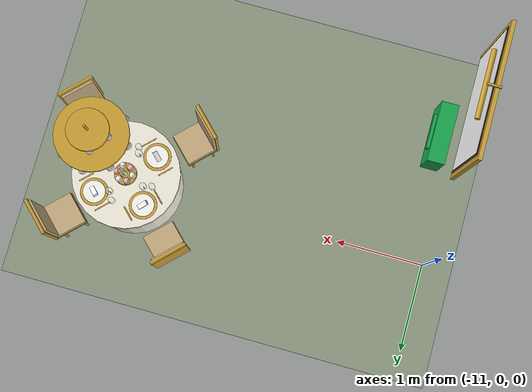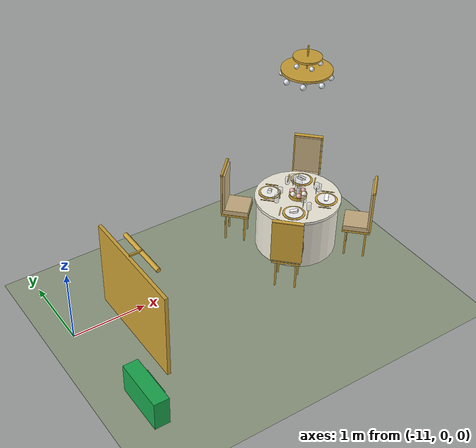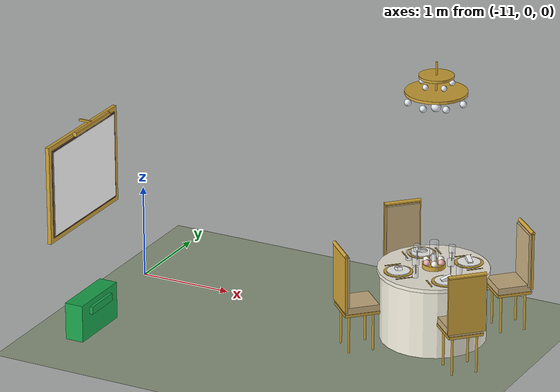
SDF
<sdf version="1.9">
 <world name="dar_tunibot">
  <model name="ground_plane">
   <static>true</static>
   <link name="link">
    <collision name="collision">
     <geometry><plane><normal>0 0 1</normal><size>60 60</size></plane></geometry>
    </collision>
    <visual name="visual">
     <geometry><plane><normal>0 0 1</normal><size>60 60</size></plane></geometry>
     <material><ambient>0.55 0.6 0.5 1</ambient><diffuse>0.55 0.6 0.5 1</diffuse></material>
    </visual>
   </link>
  </model>
  <model name="table_9">
   <static>true</static>
   <pose>-7.6 0.0 0 0 0 0</pose>
   <link name="link">
    <visual name="cloth_v">
     <pose>0.000 0.000 0.370 0.0000 0.0000 0.0000</pose>
     <geometry><cylinder><radius>0.550</radius><length>0.740</length></cylinder></geometry>
     <material>
      <ambient>0.95 0.93 0.87 1</ambient>
      <diffuse>0.95 0.93 0.87 1</diffuse>
      <specular>0.1 0.1 0.1 1</specular>
     </material>
    </visual>
    <collision name="cloth_c">
     <pose>0.000 0.000 0.370 0.0000 0.0000 0.0000</pose>
     <geometry><cylinder><radius>0.550</radius><length>0.740</length></cylinder></geometry>
    </collision>
    <visual name="drape_v">
     <pose>0.000 0.000 0.750 0.0000 0.0000 0.0000</pose>
     <geometry><cylinder><radius>0.580</radius><length>0.040</length></cylinder></geometry>
     <material>
      <ambient>0.95 0.93 0.87 1</ambient>
      <diffuse>0.95 0.93 0.87 1</diffuse>
      <specular>0.1 0.1 0.1 1</specular>
     </material>
    </visual>
    <visual name="bowl_v">
     <pose>0.000 0.000 0.795 0.0000 0.0000 0.0000</pose>
     <geometry><cylinder><radius>0.120</radius><length>0.050</length></cylinder></geometry>
     <material>
      <ambient>0.8 0.63 0.21 1</ambient>
      <diffuse>0.8 0.63 0.21 1</diffuse>
      <specular>0.1 0.1 0.1 1</specular>
     </material>
    </visual>
    <visual name="bowl_foot_v">
     <pose>0.000 0.000 0.775 0.0000 0.0000 0.0000</pose>
     <geometry><cylinder><radius>0.060</radius><length>0.020</length></cylinder></geometry>
     <material>
      <ambient>0.8 0.63 0.21 1</ambient>
      <diffuse>0.8 0.63 0.21 1</diffuse>
      <specular>0.1 0.1 0.1 1</specular>
     </material>
    </visual>
    <visual name="candle_v">
     <pose>0.000 0.000 0.870 0.0000 0.0000 0.0000</pose>
     <geometry><cylinder><radius>0.022</radius><length>0.100</length></cylinder></geometry>
     <material>
      <ambient>0.98 0.98 0.97 1</ambient>
      <diffuse>0.98 0.98 0.97 1</diffuse>
      <specular>0.1 0.1 0.1 1</specular>
     </material>
    </visual>
    <visual name="flame_v">
     <pose>0.000 0.000 0.935 0.0000 0.0000 0.0000</pose>
     <geometry><sphere><radius>0.014</radius></sphere></geometry>
     <material>
      <ambient>0.8 0.63 0.21 1</ambient>
      <diffuse>0.8 0.63 0.21 1</diffuse>
      <specular>0.1 0.1 0.1 1</specular>
      <emissive>1.0 0.6 0.2 1</emissive>
     </material>
    </visual>
    <visual name="hurricane_v">
     <pose>0.000 0.000 0.940 0.0000 0.0000 0.0000</pose>
     <geometry><cylinder><radius>0.045</radius><length>0.240</length></cylinder></geometry>
     <transparency>0.75</transparency>
     <material>
      <ambient>0.9 0.92 0.96 1</ambient>
      <diffuse>0.9 0.92 0.96 1</diffuse>
      <specular>0.1 0.1 0.1 1</specular>
     </material>
    </visual>
    <visual name="rose0_v">
     <pose>0.085 0.000 0.835 0.0000 0.0000 0.0000</pose>
     <geometry><sphere><radius>0.035</radius></sphere></geometry>
     <material>
      <ambient>0.93 0.7 0.72 1</ambient>
      <diffuse>0.93 0.7 0.72 1</diffuse>
      <specular>0.1 0.1 0.1 1</specular>
     </material>
    </visual>
    <visual name="rose1_v">
     <pose>0.043 0.074 0.835 0.0000 0.0000 0.0000</pose>
     <geometry><sphere><radius>0.035</radius></sphere></geometry>
     <material>
      <ambient>0.97 0.95 0.91 1</ambient>
      <diffuse>0.97 0.95 0.91 1</diffuse>
      <specular>0.1 0.1 0.1 1</specular>
     </material>
    </visual>
    <visual name="rose2_v">
     <pose>-0.042 0.074 0.835 0.0000 0.0000 0.0000</pose>
     <geometry><sphere><radius>0.035</radius></sphere></geometry>
     <material>
      <ambient>0.93 0.7 0.72 1</ambient>
      <diffuse>0.93 0.7 0.72 1</diffuse>
      <specular>0.1 0.1 0.1 1</specular>
     </material>
    </visual>
    <visual name="rose3_v">
     <pose>-0.085 0.000 0.835 0.0000 0.0000 0.0000</pose>
     <geometry><sphere><radius>0.035</radius></sphere></geometry>
     <material>
      <ambient>0.97 0.95 0.91 1</ambient>
      <diffuse>0.97 0.95 0.91 1</diffuse>
      <specular>0.1 0.1 0.1 1</specular>
     </material>
    </visual>
    <visual name="rose4_v">
     <pose>-0.043 -0.074 0.835 0.0000 0.0000 0.0000</pose>
     <geometry><sphere><radius>0.035</radius></sphere></geometry>
     <material>
      <ambient>0.93 0.7 0.72 1</ambient>
      <diffuse>0.93 0.7 0.72 1</diffuse>
      <specular>0.1 0.1 0.1 1</specular>
     </material>
    </visual>
    <visual name="rose5_v">
     <pose>0.043 -0.074 0.835 0.0000 0.0000 0.0000</pose>
     <geometry><sphere><radius>0.035</radius></sphere></geometry>
     <material>
      <ambient>0.97 0.95 0.91 1</ambient>
      <diffuse>0.97 0.95 0.91 1</diffuse>
      <specular>0.1 0.1 0.1 1</specular>
     </material>
    </visual>
    <collision name="seat0_c">
     <pose>0.580 0.580 0.225 0.0000 0.0000 0.0000</pose>
     <geometry><box><size>0.400 0.400 0.450</size></box></geometry>
    </collision>
    <visual name="seat_frame0_v">
     <pose>0.580 0.580 0.430 0.0000 0.0000 0.7854</pose>
     <geometry><box><size>0.370 0.370 0.030</size></box></geometry>
     <material>
      <ambient>0.8 0.63 0.21 1</ambient>
      <diffuse>0.8 0.63 0.21 1</diffuse>
      <specular>0.1 0.1 0.1 1</specular>
     </material>
    </visual>
    <visual name="cushion0_v">
     <pose>0.580 0.580 0.480 0.0000 0.0000 0.7854</pose>
     <geometry><box><size>0.360 0.360 0.070</size></box></geometry>
     <material>
      <ambient>0.78 0.68 0.5 1</ambient>
      <diffuse>0.78 0.68 0.5 1</diffuse>
      <specular>0.1 0.1 0.1 1</specular>
     </material>
    </visual>
    <visual name="back_frame0_v">
     <pose>0.707 0.707 0.780 0.0000 0.0000 0.7854</pose>
     <geometry><box><size>0.025 0.400 0.620</size></box></geometry>
     <material>
      <ambient>0.8 0.63 0.21 1</ambient>
      <diffuse>0.8 0.63 0.21 1</diffuse>
      <specular>0.1 0.1 0.1 1</specular>
     </material>
    </visual>
    <visual name="back0_v">
     <pose>0.697 0.697 0.780 0.0000 0.0000 0.7854</pose>
     <geometry><box><size>0.050 0.360 0.580</size></box></geometry>
     <material>
      <ambient>0.78 0.68 0.5 1</ambient>
      <diffuse>0.78 0.68 0.5 1</diffuse>
      <specular>0.1 0.1 0.1 1</specular>
     </material>
    </visual>
    <visual name="back_top0_v">
     <pose>0.707 0.707 1.090 1.5708 0.0000 0.7854</pose>
     <geometry><cylinder><radius>0.020</radius><length>0.400</length></cylinder></geometry>
     <material>
      <ambient>0.8 0.63 0.21 1</ambient>
      <diffuse>0.8 0.63 0.21 1</diffuse>
      <specular>0.1 0.1 0.1 1</specular>
     </material>
    </visual>
    <visual name="leg0_0_v">
     <pose>0.580 0.396 0.210 0.0000 0.0000 0.7854</pose>
     <geometry><cylinder><radius>0.012</radius><length>0.420</length></cylinder></geometry>
     <material>
      <ambient>0.8 0.63 0.21 1</ambient>
      <diffuse>0.8 0.63 0.21 1</diffuse>
      <specular>0.1 0.1 0.1 1</specular>
     </material>
    </visual>
    <visual name="leg0_1_v">
     <pose>0.396 0.580 0.210 0.0000 0.0000 0.7854</pose>
     <geometry><cylinder><radius>0.012</radius><length>0.420</length></cylinder></geometry>
     <material>
      <ambient>0.8 0.63 0.21 1</ambient>
      <diffuse>0.8 0.63 0.21 1</diffuse>
      <specular>0.1 0.1 0.1 1</specular>
     </material>
    </visual>
    <visual name="leg0_2_v">
     <pose>0.764 0.580 0.210 0.0000 0.0000 0.7854</pose>
     <geometry><cylinder><radius>0.012</radius><length>0.420</length></cylinder></geometry>
     <material>
      <ambient>0.8 0.63 0.21 1</ambient>
      <diffuse>0.8 0.63 0.21 1</diffuse>
      <specular>0.1 0.1 0.1 1</specular>
     </material>
    </visual>
    <visual name="leg0_3_v">
     <pose>0.580 0.764 0.210 0.0000 0.0000 0.7854</pose>
     <geometry><cylinder><radius>0.012</radius><length>0.420</length></cylinder></geometry>
     <material>
      <ambient>0.8 0.63 0.21 1</ambient>
      <diffuse>0.8 0.63 0.21 1</diffuse>
      <specular>0.1 0.1 0.1 1</specular>
     </material>
    </visual>
    <visual name="charger0_v">
     <pose>0.269 0.269 0.773 0.0000 0.0000 0.7854</pose>
     <geometry><cylinder><radius>0.150</radius><length>0.006</length></cylinder></geometry>
     <material>
      <ambient>0.8 0.63 0.21 1</ambient>
      <diffuse>0.8 0.63 0.21 1</diffuse>
      <specular>0.1 0.1 0.1 1</specular>
     </material>
    </visual>
    <visual name="plate0_v">
     <pose>0.269 0.269 0.781 0.0000 0.0000 0.7854</pose>
     <geometry><cylinder><radius>0.120</radius><length>0.010</length></cylinder></geometry>
     <material>
      <ambient>0.98 0.98 0.97 1</ambient>
      <diffuse>0.98 0.98 0.97 1</diffuse>
      <specular>0.1 0.1 0.1 1</specular>
     </material>
    </visual>
    <visual name="napkin0_v">
     <pose>0.269 0.269 0.803 0.3500 0.0000 0.7854</pose>
     <geometry><box><size>0.050 0.110 0.035</size></box></geometry>
     <material>
      <ambient>0.98 0.98 0.97 1</ambient>
      <diffuse>0.98 0.98 0.97 1</diffuse>
      <specular>0.1 0.1 0.1 1</specular>
     </material>
    </visual>
    <visual name="fork0_v">
     <pose>0.396 0.141 0.772 0.0000 0.0000 0.7854</pose>
     <geometry><box><size>0.170 0.014 0.004</size></box></geometry>
     <material>
      <ambient>0.8 0.63 0.21 1</ambient>
      <diffuse>0.8 0.63 0.21 1</diffuse>
      <specular>0.1 0.1 0.1 1</specular>
     </material>
    </visual>
    <visual name="knife0_v">
     <pose>0.141 0.396 0.772 0.0000 0.0000 0.7854</pose>
     <geometry><box><size>0.180 0.012 0.004</size></box></geometry>
     <material>
      <ambient>0.8 0.63 0.21 1</ambient>
      <diffuse>0.8 0.63 0.21 1</diffuse>
      <specular>0.1 0.1 0.1 1</specular>
     </material>
    </visual>
    <visual name="wine_stem0_v">
     <pose>0.092 0.233 0.820 0.0000 0.0000 0.7854</pose>
     <geometry><cylinder><radius>0.004</radius><length>0.100</length></cylinder></geometry>
     <material>
      <ambient>0.9 0.92 0.96 1</ambient>
      <diffuse>0.9 0.92 0.96 1</diffuse>
      <specular>0.1 0.1 0.1 1</specular>
     </material>
    </visual>
    <visual name="wine_bowl0_v">
     <pose>0.092 0.233 0.905 0.0000 0.0000 0.7854</pose>
     <geometry><cylinder><radius>0.035</radius><length>0.070</length></cylinder></geometry>
     <transparency>0.6</transparency>
     <material>
      <ambient>0.9 0.92 0.96 1</ambient>
      <diffuse>0.9 0.92 0.96 1</diffuse>
      <specular>0.1 0.1 0.1 1</specular>
     </material>
    </visual>
    <visual name="water0_v">
     <pose>0.057 0.311 0.820 0.0000 0.0000 0.7854</pose>
     <geometry><cylinder><radius>0.030</radius><length>0.100</length></cylinder></geometry>
     <transparency>0.6</transparency>
     <material>
      <ambient>0.9 0.92 0.96 1</ambient>
      <diffuse>0.9 0.92 0.96 1</diffuse>
      <specular>0.1 0.1 0.1 1</specular>
     </material>
    </visual>
    <collision name="seat1_c">
     <pose>-0.580 0.580 0.225 0.0000 0.0000 0.0000</pose>
     <geometry><box><size>0.400 0.400 0.450</size></box></geometry>
    </collision>
    <visual name="seat_frame1_v">
     <pose>-0.580 0.580 0.430 0.0000 0.0000 2.3562</pose>
     <geometry><box><size>0.370 0.370 0.030</size></box></geometry>
     <material>
      <ambient>0.8 0.63 0.21 1</ambient>
      <diffuse>0.8 0.63 0.21 1</diffuse>
      <specular>0.1 0.1 0.1 1</specular>
     </material>
    </visual>
    <visual name="cushion1_v">
     <pose>-0.580 0.580 0.480 0.0000 0.0000 2.3562</pose>
     <geometry><box><size>0.360 0.360 0.070</size></box></geometry>
     <material>
      <ambient>0.78 0.68 0.5 1</ambient>
      <diffuse>0.78 0.68 0.5 1</diffuse>
      <specular>0.1 0.1 0.1 1</specular>
     </material>
    </visual>
    <visual name="back_frame1_v">
     <pose>-0.707 0.707 0.780 0.0000 0.0000 2.3562</pose>
     <geometry><box><size>0.025 0.400 0.620</size></box></geometry>
     <material>
      <ambient>0.8 0.63 0.21 1</ambient>
      <diffuse>0.8 0.63 0.21 1</diffuse>
      <specular>0.1 0.1 0.1 1</specular>
     </material>
    </visual>
    <visual name="back1_v">
     <pose>-0.697 0.697 0.780 0.0000 0.0000 2.3562</pose>
     <geometry><box><size>0.050 0.360 0.580</size></box></geometry>
     <material>
      <ambient>0.78 0.68 0.5 1</ambient>
      <diffuse>0.78 0.68 0.5 1</diffuse>
      <specular>0.1 0.1 0.1 1</specular>
     </material>
    </visual>
    <visual name="back_top1_v">
     <pose>-0.707 0.707 1.090 1.5708 0.0000 2.3562</pose>
     <geometry><cylinder><radius>0.020</radius><length>0.400</length></cylinder></geometry>
     <material>
      <ambient>0.8 0.63 0.21 1</ambient>
      <diffuse>0.8 0.63 0.21 1</diffuse>
      <specular>0.1 0.1 0.1 1</specular>
     </material>
    </visual>
    <visual name="leg1_0_v">
     <pose>-0.396 0.580 0.210 0.0000 0.0000 2.3562</pose>
     <geometry><cylinder><radius>0.012</radius><length>0.420</length></cylinder></geometry>
     <material>
      <ambient>0.8 0.63 0.21 1</ambient>
      <diffuse>0.8 0.63 0.21 1</diffuse>
      <specular>0.1 0.1 0.1 1</specular>
     </material>
    </visual>
    <visual name="leg1_1_v">
     <pose>-0.580 0.396 0.210 0.0000 0.0000 2.3562</pose>
     <geometry><cylinder><radius>0.012</radius><length>0.420</length></cylinder></geometry>
     <material>
      <ambient>0.8 0.63 0.21 1</ambient>
      <diffuse>0.8 0.63 0.21 1</diffuse>
      <specular>0.1 0.1 0.1 1</specular>
     </material>
    </visual>
    <visual name="leg1_2_v">
     <pose>-0.580 0.764 0.210 0.0000 0.0000 2.3562</pose>
     <geometry><cylinder><radius>0.012</radius><length>0.420</length></cylinder></geometry>
     <material>
      <ambient>0.8 0.63 0.21 1</ambient>
      <diffuse>0.8 0.63 0.21 1</diffuse>
      <specular>0.1 0.1 0.1 1</specular>
     </material>
    </visual>
    <visual name="leg1_3_v">
     <pose>-0.764 0.580 0.210 0.0000 0.0000 2.3562</pose>
     <geometry><cylinder><radius>0.012</radius><length>0.420</length></cylinder></geometry>
     <material>
      <ambient>0.8 0.63 0.21 1</ambient>
      <diffuse>0.8 0.63 0.21 1</diffuse>
      <specular>0.1 0.1 0.1 1</specular>
     </material>
    </visual>
    <visual name="charger1_v">
     <pose>-0.269 0.269 0.773 0.0000 0.0000 2.3562</pose>
     <geometry><cylinder><radius>0.150</radius><length>0.006</length></cylinder></geometry>
     <material>
      <ambient>0.8 0.63 0.21 1</ambient>
      <diffuse>0.8 0.63 0.21 1</diffuse>
      <specular>0.1 0.1 0.1 1</specular>
     </material>
    </visual>
    <visual name="plate1_v">
     <pose>-0.269 0.269 0.781 0.0000 0.0000 2.3562</pose>
     <geometry><cylinder><radius>0.120</radius><length>0.010</length></cylinder></geometry>
     <material>
      <ambient>0.98 0.98 0.97 1</ambient>
      <diffuse>0.98 0.98 0.97 1</diffuse>
      <specular>0.1 0.1 0.1 1</specular>
     </material>
    </visual>
    <visual name="napkin1_v">
     <pose>-0.269 0.269 0.803 0.3500 0.0000 2.3562</pose>
     <geometry><box><size>0.050 0.110 0.035</size></box></geometry>
     <material>
      <ambient>0.98 0.98 0.97 1</ambient>
      <diffuse>0.98 0.98 0.97 1</diffuse>
      <specular>0.1 0.1 0.1 1</specular>
     </material>
    </visual>
    <visual name="fork1_v">
     <pose>-0.141 0.396 0.772 0.0000 0.0000 2.3562</pose>
     <geometry><box><size>0.170 0.014 0.004</size></box></geometry>
     <material>
      <ambient>0.8 0.63 0.21 1</ambient>
      <diffuse>0.8 0.63 0.21 1</diffuse>
      <specular>0.1 0.1 0.1 1</specular>
     </material>
    </visual>
    <visual name="knife1_v">
     <pose>-0.396 0.141 0.772 0.0000 0.0000 2.3562</pose>
     <geometry><box><size>0.180 0.012 0.004</size></box></geometry>
     <material>
      <ambient>0.8 0.63 0.21 1</ambient>
      <diffuse>0.8 0.63 0.21 1</diffuse>
      <specular>0.1 0.1 0.1 1</specular>
     </material>
    </visual>
    <visual name="wine_stem1_v">
     <pose>-0.233 0.092 0.820 0.0000 0.0000 2.3562</pose>
     <geometry><cylinder><radius>0.004</radius><length>0.100</length></cylinder></geometry>
     <material>
      <ambient>0.9 0.92 0.96 1</ambient>
      <diffuse>0.9 0.92 0.96 1</diffuse>
      <specular>0.1 0.1 0.1 1</specular>
     </material>
    </visual>
    <visual name="wine_bowl1_v">
     <pose>-0.233 0.092 0.905 0.0000 0.0000 2.3562</pose>
     <geometry><cylinder><radius>0.035</radius><length>0.070</length></cylinder></geometry>
     <transparency>0.6</transparency>
     <material>
      <ambient>0.9 0.92 0.96 1</ambient>
      <diffuse>0.9 0.92 0.96 1</diffuse>
      <specular>0.1 0.1 0.1 1</specular>
     </material>
    </visual>
    <visual name="water1_v">
     <pose>-0.311 0.057 0.820 0.0000 0.0000 2.3562</pose>
     <geometry><cylinder><radius>0.030</radius><length>0.100</length></cylinder></geometry>
     <transparency>0.6</transparency>
     <material>
      <ambient>0.9 0.92 0.96 1</ambient>
      <diffuse>0.9 0.92 0.96 1</diffuse>
      <specular>0.1 0.1 0.1 1</specular>
     </material>
    </visual>
    <collision name="seat2_c">
     <pose>-0.580 -0.580 0.225 0.0000 0.0000 0.0000</pose>
     <geometry><box><size>0.400 0.400 0.450</size></box></geometry>
    </collision>
    <visual name="seat_frame2_v">
     <pose>-0.580 -0.580 0.430 0.0000 0.0000 3.9270</pose>
     <geometry><box><size>0.370 0.370 0.030</size></box></geometry>
     <material>
      <ambient>0.8 0.63 0.21 1</ambient>
      <diffuse>0.8 0.63 0.21 1</diffuse>
      <specular>0.1 0.1 0.1 1</specular>
     </material>
    </visual>
    <visual name="cushion2_v">
     <pose>-0.580 -0.580 0.480 0.0000 0.0000 3.9270</pose>
     <geometry><box><size>0.360 0.360 0.070</size></box></geometry>
     <material>
      <ambient>0.78 0.68 0.5 1</ambient>
      <diffuse>0.78 0.68 0.5 1</diffuse>
      <specular>0.1 0.1 0.1 1</specular>
     </material>
    </visual>
    <visual name="back_frame2_v">
     <pose>-0.707 -0.707 0.780 0.0000 0.0000 3.9270</pose>
     <geometry><box><size>0.025 0.400 0.620</size></box></geometry>
     <material>
      <ambient>0.8 0.63 0.21 1</ambient>
      <diffuse>0.8 0.63 0.21 1</diffuse>
      <specular>0.1 0.1 0.1 1</specular>
     </material>
    </visual>
    <visual name="back2_v">
     <pose>-0.697 -0.697 0.780 0.0000 0.0000 3.9270</pose>
     <geometry><box><size>0.050 0.360 0.580</size></box></geometry>
     <material>
      <ambient>0.78 0.68 0.5 1</ambient>
      <diffuse>0.78 0.68 0.5 1</diffuse>
      <specular>0.1 0.1 0.1 1</specular>
     </material>
    </visual>
    <visual name="back_top2_v">
     <pose>-0.707 -0.707 1.090 1.5708 0.0000 3.9270</pose>
     <geometry><cylinder><radius>0.020</radius><length>0.400</length></cylinder></geometry>
     <material>
      <ambient>0.8 0.63 0.21 1</ambient>
      <diffuse>0.8 0.63 0.21 1</diffuse>
      <specular>0.1 0.1 0.1 1</specular>
     </material>
    </visual>
    <visual name="leg2_0_v">
     <pose>-0.580 -0.396 0.210 0.0000 0.0000 3.9270</pose>
     <geometry><cylinder><radius>0.012</radius><length>0.420</length></cylinder></geometry>
     <material>
      <ambient>0.8 0.63 0.21 1</ambient>
      <diffuse>0.8 0.63 0.21 1</diffuse>
      <specular>0.1 0.1 0.1 1</specular>
     </material>
    </visual>
    <visual name="leg2_1_v">
     <pose>-0.396 -0.580 0.210 0.0000 0.0000 3.9270</pose>
     <geometry><cylinder><radius>0.012</radius><length>0.420</length></cylinder></geometry>
     <material>
      <ambient>0.8 0.63 0.21 1</ambient>
      <diffuse>0.8 0.63 0.21 1</diffuse>
      <specular>0.1 0.1 0.1 1</specular>
     </material>
    </visual>
    <visual name="leg2_2_v">
     <pose>-0.764 -0.580 0.210 0.0000 0.0000 3.9270</pose>
     <geometry><cylinder><radius>0.012</radius><length>0.420</length></cylinder></geometry>
     <material>
      <ambient>0.8 0.63 0.21 1</ambient>
      <diffuse>0.8 0.63 0.21 1</diffuse>
      <specular>0.1 0.1 0.1 1</specular>
     </material>
    </visual>
    <visual name="leg2_3_v">
     <pose>-0.580 -0.764 0.210 0.0000 0.0000 3.9270</pose>
     <geometry><cylinder><radius>0.012</radius><length>0.420</length></cylinder></geometry>
     <material>
      <ambient>0.8 0.63 0.21 1</ambient>
      <diffuse>0.8 0.63 0.21 1</diffuse>
      <specular>0.1 0.1 0.1 1</specular>
     </material>
    </visual>
    <visual name="charger2_v">
     <pose>-0.269 -0.269 0.773 0.0000 0.0000 3.9270</pose>
     <geometry><cylinder><radius>0.150</radius><length>0.006</length></cylinder></geometry>
     <material>
      <ambient>0.8 0.63 0.21 1</ambient>
      <diffuse>0.8 0.63 0.21 1</diffuse>
      <specular>0.1 0.1 0.1 1</specular>
     </material>
    </visual>
    <visual name="plate2_v">
     <pose>-0.269 -0.269 0.781 0.0000 0.0000 3.9270</pose>
     <geometry><cylinder><radius>0.120</radius><length>0.010</length></cylinder></geometry>
     <material>
      <ambient>0.98 0.98 0.97 1</ambient>
      <diffuse>0.98 0.98 0.97 1</diffuse>
      <specular>0.1 0.1 0.1 1</specular>
     </material>
    </visual>
    <visual name="napkin2_v">
     <pose>-0.269 -0.269 0.803 0.3500 0.0000 3.9270</pose>
     <geometry><box><size>0.050 0.110 0.035</size></box></geometry>
     <material>
      <ambient>0.98 0.98 0.97 1</ambient>
      <diffuse>0.98 0.98 0.97 1</diffuse>
      <specular>0.1 0.1 0.1 1</specular>
     </material>
    </visual>
    <visual name="fork2_v">
     <pose>-0.396 -0.141 0.772 0.0000 0.0000 3.9270</pose>
     <geometry><box><size>0.170 0.014 0.004</size></box></geometry>
     <material>
      <ambient>0.8 0.63 0.21 1</ambient>
      <diffuse>0.8 0.63 0.21 1</diffuse>
      <specular>0.1 0.1 0.1 1</specular>
     </material>
    </visual>
    <visual name="knife2_v">
     <pose>-0.141 -0.396 0.772 0.0000 0.0000 3.9270</pose>
     <geometry><box><size>0.180 0.012 0.004</size></box></geometry>
     <material>
      <ambient>0.8 0.63 0.21 1</ambient>
      <diffuse>0.8 0.63 0.21 1</diffuse>
      <specular>0.1 0.1 0.1 1</specular>
     </material>
    </visual>
    <visual name="wine_stem2_v">
     <pose>-0.092 -0.233 0.820 0.0000 0.0000 3.9270</pose>
     <geometry><cylinder><radius>0.004</radius><length>0.100</length></cylinder></geometry>
     <material>
      <ambient>0.9 0.92 0.96 1</ambient>
      <diffuse>0.9 0.92 0.96 1</diffuse>
      <specular>0.1 0.1 0.1 1</specular>
     </material>
    </visual>
    <visual name="wine_bowl2_v">
     <pose>-0.092 -0.233 0.905 0.0000 0.0000 3.9270</pose>
     <geometry><cylinder><radius>0.035</radius><length>0.070</length></cylinder></geometry>
     <transparency>0.6</transparency>
     <material>
      <ambient>0.9 0.92 0.96 1</ambient>
      <diffuse>0.9 0.92 0.96 1</diffuse>
      <specular>0.1 0.1 0.1 1</specular>
     </material>
    </visual>
    <visual name="water2_v">
     <pose>-0.057 -0.311 0.820 0.0000 0.0000 3.9270</pose>
     <geometry><cylinder><radius>0.030</radius><length>0.100</length></cylinder></geometry>
     <transparency>0.6</transparency>
     <material>
      <ambient>0.9 0.92 0.96 1</ambient>
      <diffuse>0.9 0.92 0.96 1</diffuse>
      <specular>0.1 0.1 0.1 1</specular>
     </material>
    </visual>
    <collision name="seat3_c">
     <pose>0.580 -0.580 0.225 0.0000 0.0000 0.0000</pose>
     <geometry><box><size>0.400 0.400 0.450</size></box></geometry>
    </collision>
    <visual name="seat_frame3_v">
     <pose>0.580 -0.580 0.430 0.0000 0.0000 5.4978</pose>
     <geometry><box><size>0.370 0.370 0.030</size></box></geometry>
     <material>
      <ambient>0.8 0.63 0.21 1</ambient>
      <diffuse>0.8 0.63 0.21 1</diffuse>
      <specular>0.1 0.1 0.1 1</specular>
     </material>
    </visual>
    <visual name="cushion3_v">
     <pose>0.580 -0.580 0.480 0.0000 0.0000 5.4978</pose>
     <geometry><box><size>0.360 0.360 0.070</size></box></geometry>
     <material>
      <ambient>0.78 0.68 0.5 1</ambient>
      <diffuse>0.78 0.68 0.5 1</diffuse>
      <specular>0.1 0.1 0.1 1</specular>
     </material>
    </visual>
    <visual name="back_frame3_v">
     <pose>0.707 -0.707 0.780 0.0000 0.0000 5.4978</pose>
     <geometry><box><size>0.025 0.400 0.620</size></box></geometry>
     <material>
      <ambient>0.8 0.63 0.21 1</ambient>
      <diffuse>0.8 0.63 0.21 1</diffuse>
      <specular>0.1 0.1 0.1 1</specular>
     </material>
    </visual>
    <visual name="back3_v">
     <pose>0.697 -0.697 0.780 0.0000 0.0000 5.4978</pose>
     <geometry><box><size>0.050 0.360 0.580</size></box></geometry>
     <material>
      <ambient>0.78 0.68 0.5 1</ambient>
      <diffuse>0.78 0.68 0.5 1</diffuse>
      <specular>0.1 0.1 0.1 1</specular>
     </material>
    </visual>
    <visual name="back_top3_v">
     <pose>0.707 -0.707 1.090 1.5708 0.0000 5.4978</pose>
     <geometry><cylinder><radius>0.020</radius><length>0.400</length></cylinder></geometry>
     <material>
      <ambient>0.8 0.63 0.21 1</ambient>
      <diffuse>0.8 0.63 0.21 1</diffuse>
      <specular>0.1 0.1 0.1 1</specular>
     </material>
    </visual>
    <visual name="leg3_0_v">
     <pose>0.396 -0.580 0.210 0.0000 0.0000 5.4978</pose>
     <geometry><cylinder><radius>0.012</radius><length>0.420</length></cylinder></geometry>
     <material>
      <ambient>0.8 0.63 0.21 1</ambient>
      <diffuse>0.8 0.63 0.21 1</diffuse>
      <specular>0.1 0.1 0.1 1</specular>
     </material>
    </visual>
    <visual name="leg3_1_v">
     <pose>0.580 -0.396 0.210 0.0000 0.0000 5.4978</pose>
     <geometry><cylinder><radius>0.012</radius><length>0.420</length></cylinder></geometry>
     <material>
      <ambient>0.8 0.63 0.21 1</ambient>
      <diffuse>0.8 0.63 0.21 1</diffuse>
      <specular>0.1 0.1 0.1 1</specular>
     </material>
    </visual>
    <visual name="leg3_2_v">
     <pose>0.580 -0.764 0.210 0.0000 0.0000 5.4978</pose>
     <geometry><cylinder><radius>0.012</radius><length>0.420</length></cylinder></geometry>
     <material>
      <ambient>0.8 0.63 0.21 1</ambient>
      <diffuse>0.8 0.63 0.21 1</diffuse>
      <specular>0.1 0.1 0.1 1</specular>
     </material>
    </visual>
    <visual name="leg3_3_v">
     <pose>0.764 -0.580 0.210 0.0000 0.0000 5.4978</pose>
     <geometry><cylinder><radius>0.012</radius><length>0.420</length></cylinder></geometry>
     <material>
      <ambient>0.8 0.63 0.21 1</ambient>
      <diffuse>0.8 0.63 0.21 1</diffuse>
      <specular>0.1 0.1 0.1 1</specular>
     </material>
    </visual>
    <visual name="charger3_v">
     <pose>0.269 -0.269 0.773 0.0000 0.0000 5.4978</pose>
     <geometry><cylinder><radius>0.150</radius><length>0.006</length></cylinder></geometry>
     <material>
      <ambient>0.8 0.63 0.21 1</ambient>
      <diffuse>0.8 0.63 0.21 1</diffuse>
      <specular>0.1 0.1 0.1 1</specular>
     </material>
    </visual>
    <visual name="plate3_v">
     <pose>0.269 -0.269 0.781 0.0000 0.0000 5.4978</pose>
     <geometry><cylinder><radius>0.120</radius><length>0.010</length></cylinder></geometry>
     <material>
      <ambient>0.98 0.98 0.97 1</ambient>
      <diffuse>0.98 0.98 0.97 1</diffuse>
      <specular>0.1 0.1 0.1 1</specular>
     </material>
    </visual>
    <visual name="napkin3_v">
     <pose>0.269 -0.269 0.803 0.3500 0.0000 5.4978</pose>
     <geometry><box><size>0.050 0.110 0.035</size></box></geometry>
     <material>
      <ambient>0.98 0.98 0.97 1</ambient>
      <diffuse>0.98 0.98 0.97 1</diffuse>
      <specular>0.1 0.1 0.1 1</specular>
     </material>
    </visual>
    <visual name="fork3_v">
     <pose>0.141 -0.396 0.772 0.0000 0.0000 5.4978</pose>
     <geometry><box><size>0.170 0.014 0.004</size></box></geometry>
     <material>
      <ambient>0.8 0.63 0.21 1</ambient>
      <diffuse>0.8 0.63 0.21 1</diffuse>
      <specular>0.1 0.1 0.1 1</specular>
     </material>
    </visual>
    <visual name="knife3_v">
     <pose>0.396 -0.141 0.772 0.0000 0.0000 5.4978</pose>
     <geometry><box><size>0.180 0.012 0.004</size></box></geometry>
     <material>
      <ambient>0.8 0.63 0.21 1</ambient>
      <diffuse>0.8 0.63 0.21 1</diffuse>
      <specular>0.1 0.1 0.1 1</specular>
     </material>
    </visual>
    <visual name="wine_stem3_v">
     <pose>0.233 -0.092 0.820 0.0000 0.0000 5.4978</pose>
     <geometry><cylinder><radius>0.004</radius><length>0.100</length></cylinder></geometry>
     <material>
      <ambient>0.9 0.92 0.96 1</ambient>
      <diffuse>0.9 0.92 0.96 1</diffuse>
      <specular>0.1 0.1 0.1 1</specular>
     </material>
    </visual>
    <visual name="wine_bowl3_v">
     <pose>0.233 -0.092 0.905 0.0000 0.0000 5.4978</pose>
     <geometry><cylinder><radius>0.035</radius><length>0.070</length></cylinder></geometry>
     <transparency>0.6</transparency>
     <material>
      <ambient>0.9 0.92 0.96 1</ambient>
      <diffuse>0.9 0.92 0.96 1</diffuse>
      <specular>0.1 0.1 0.1 1</specular>
     </material>
    </visual>
    <visual name="water3_v">
     <pose>0.311 -0.057 0.820 0.0000 0.0000 5.4978</pose>
     <geometry><cylinder><radius>0.030</radius><length>0.100</length></cylinder></geometry>
     <transparency>0.6</transparency>
     <material>
      <ambient>0.9 0.92 0.96 1</ambient>
      <diffuse>0.9 0.92 0.96 1</diffuse>
      <specular>0.1 0.1 0.1 1</specular>
     </material>
    </visual>
    <visual name="chand_rod_v">
     <pose>0.000 0.000 2.750 0.0000 0.0000 0.0000</pose>
     <geometry><cylinder><radius>0.010</radius><length>0.500</length></cylinder></geometry>
     <material>
      <ambient>0.8 0.63 0.21 1</ambient>
      <diffuse>0.8 0.63 0.21 1</diffuse>
      <specular>0.1 0.1 0.1 1</specular>
     </material>
    </visual>
    <visual name="chand_ring_v">
     <pose>0.000 0.000 2.680 0.0000 0.0000 0.0000</pose>
     <geometry><cylinder><radius>0.320</radius><length>0.030</length></cylinder></geometry>
     <material>
      <ambient>0.8 0.63 0.21 1</ambient>
      <diffuse>0.8 0.63 0.21 1</diffuse>
      <specular>0.1 0.1 0.1 1</specular>
     </material>
    </visual>
    <visual name="chand_ring_top_v">
     <pose>0.000 0.000 2.850 0.0000 0.0000 0.0000</pose>
     <geometry><cylinder><radius>0.180</radius><length>0.025</length></cylinder></geometry>
     <material>
      <ambient>0.8 0.63 0.21 1</ambient>
      <diffuse>0.8 0.63 0.21 1</diffuse>
      <specular>0.1 0.1 0.1 1</specular>
     </material>
    </visual>
    <visual name="chand_drop_v">
     <pose>0.000 0.000 2.520 0.0000 0.0000 0.0000</pose>
     <geometry><sphere><radius>0.050</radius></sphere></geometry>
     <material>
      <ambient>0.9 0.92 0.96 1</ambient>
      <diffuse>0.9 0.92 0.96 1</diffuse>
      <specular>0.1 0.1 0.1 1</specular>
      <emissive>0.55 0.52 0.45 1</emissive>
     </material>
    </visual>
    <visual name="crystal0_0_v">
     <pose>0.300 0.000 2.600 0.0000 0.0000 0.0000</pose>
     <geometry><sphere><radius>0.035</radius></sphere></geometry>
     <material>
      <ambient>0.9 0.92 0.96 1</ambient>
      <diffuse>0.9 0.92 0.96 1</diffuse>
      <specular>0.1 0.1 0.1 1</specular>
      <emissive>0.55 0.52 0.45 1</emissive>
     </material>
    </visual>
    <visual name="crystal0_1_v">
     <pose>0.212 0.212 2.600 0.0000 0.0000 0.0000</pose>
     <geometry><sphere><radius>0.035</radius></sphere></geometry>
     <material>
      <ambient>0.9 0.92 0.96 1</ambient>
      <diffuse>0.9 0.92 0.96 1</diffuse>
      <specular>0.1 0.1 0.1 1</specular>
      <emissive>0.55 0.52 0.45 1</emissive>
     </material>
    </visual>
    <visual name="crystal0_2_v">
     <pose>0.000 0.300 2.600 0.0000 0.0000 0.0000</pose>
     <geometry><sphere><radius>0.035</radius></sphere></geometry>
     <material>
      <ambient>0.9 0.92 0.96 1</ambient>
      <diffuse>0.9 0.92 0.96 1</diffuse>
      <specular>0.1 0.1 0.1 1</specular>
      <emissive>0.55 0.52 0.45 1</emissive>
     </material>
    </visual>
    <visual name="crystal0_3_v">
     <pose>-0.212 0.212 2.600 0.0000 0.0000 0.0000</pose>
     <geometry><sphere><radius>0.035</radius></sphere></geometry>
     <material>
      <ambient>0.9 0.92 0.96 1</ambient>
      <diffuse>0.9 0.92 0.96 1</diffuse>
      <specular>0.1 0.1 0.1 1</specular>
      <emissive>0.55 0.52 0.45 1</emissive>
     </material>
    </visual>
    <visual name="crystal0_4_v">
     <pose>-0.300 0.000 2.600 0.0000 0.0000 0.0000</pose>
     <geometry><sphere><radius>0.035</radius></sphere></geometry>
     <material>
      <ambient>0.9 0.92 0.96 1</ambient>
      <diffuse>0.9 0.92 0.96 1</diffuse>
      <specular>0.1 0.1 0.1 1</specular>
      <emissive>0.55 0.52 0.45 1</emissive>
     </material>
    </visual>
    <visual name="crystal0_5_v">
     <pose>-0.212 -0.212 2.600 0.0000 0.0000 0.0000</pose>
     <geometry><sphere><radius>0.035</radius></sphere></geometry>
     <material>
      <ambient>0.9 0.92 0.96 1</ambient>
      <diffuse>0.9 0.92 0.96 1</diffuse>
      <specular>0.1 0.1 0.1 1</specular>
      <emissive>0.55 0.52 0.45 1</emissive>
     </material>
    </visual>
    <visual name="crystal0_6_v">
     <pose>-0.000 -0.300 2.600 0.0000 0.0000 0.0000</pose>
     <geometry><sphere><radius>0.035</radius></sphere></geometry>
     <material>
      <ambient>0.9 0.92 0.96 1</ambient>
      <diffuse>0.9 0.92 0.96 1</diffuse>
      <specular>0.1 0.1 0.1 1</specular>
      <emissive>0.55 0.52 0.45 1</emissive>
     </material>
    </visual>
    <visual name="crystal0_7_v">
     <pose>0.212 -0.212 2.600 0.0000 0.0000 0.0000</pose>
     <geometry><sphere><radius>0.035</radius></sphere></geometry>
     <material>
      <ambient>0.9 0.92 0.96 1</ambient>
      <diffuse>0.9 0.92 0.96 1</diffuse>
      <specular>0.1 0.1 0.1 1</specular>
      <emissive>0.55 0.52 0.45 1</emissive>
     </material>
    </visual>
    <visual name="crystal1_0_v">
     <pose>0.129 0.094 2.770 0.0000 0.0000 0.0000</pose>
     <geometry><sphere><radius>0.030</radius></sphere></geometry>
     <material>
      <ambient>0.9 0.92 0.96 1</ambient>
      <diffuse>0.9 0.92 0.96 1</diffuse>
      <specular>0.1 0.1 0.1 1</specular>
      <emissive>0.55 0.52 0.45 1</emissive>
     </material>
    </visual>
    <visual name="crystal1_1_v">
     <pose>-0.049 0.152 2.770 0.0000 0.0000 0.0000</pose>
     <geometry><sphere><radius>0.030</radius></sphere></geometry>
     <material>
      <ambient>0.9 0.92 0.96 1</ambient>
      <diffuse>0.9 0.92 0.96 1</diffuse>
      <specular>0.1 0.1 0.1 1</specular>
      <emissive>0.55 0.52 0.45 1</emissive>
     </material>
    </visual>
    <visual name="crystal1_2_v">
     <pose>-0.160 0.000 2.770 0.0000 0.0000 0.0000</pose>
     <geometry><sphere><radius>0.030</radius></sphere></geometry>
     <material>
      <ambient>0.9 0.92 0.96 1</ambient>
      <diffuse>0.9 0.92 0.96 1</diffuse>
      <specular>0.1 0.1 0.1 1</specular>
      <emissive>0.55 0.52 0.45 1</emissive>
     </material>
    </visual>
    <visual name="crystal1_3_v">
     <pose>-0.049 -0.152 2.770 0.0000 0.0000 0.0000</pose>
     <geometry><sphere><radius>0.030</radius></sphere></geometry>
     <material>
      <ambient>0.9 0.92 0.96 1</ambient>
      <diffuse>0.9 0.92 0.96 1</diffuse>
      <specular>0.1 0.1 0.1 1</specular>
      <emissive>0.55 0.52 0.45 1</emissive>
     </material>
    </visual>
    <visual name="crystal1_4_v">
     <pose>0.129 -0.094 2.770 0.0000 0.0000 0.0000</pose>
     <geometry><sphere><radius>0.030</radius></sphere></geometry>
     <material>
      <ambient>0.9 0.92 0.96 1</ambient>
      <diffuse>0.9 0.92 0.96 1</diffuse>
      <specular>0.1 0.1 0.1 1</specular>
      <emissive>0.55 0.52 0.45 1</emissive>
     </material>
    </visual>
   </link>
  </model>
  <model name="charging_dock">
   <static>true</static>
   <pose>-10.8 -1.45 0 0 0 0</pose>
   <link name="link">
    <visual name="body_v">
     <pose>0.000 0.000 0.200 0.0000 0.0000 0.0000</pose>
     <geometry><box><size>0.200 0.700 0.400</size></box></geometry>
     <material>
      <ambient>0.1 0.65 0.3 1</ambient>
      <diffuse>0.1 0.65 0.3 1</diffuse>
      <specular>0.1 0.1 0.1 1</specular>
     </material>
    </visual>
    <collision name="body_c">
     <pose>0.000 0.000 0.200 0.0000 0.0000 0.0000</pose>
     <geometry><box><size>0.200 0.700 0.400</size></box></geometry>
    </collision>
    <visual name="light_v">
     <pose>0.110 0.000 0.300 0.0000 0.0000 0.0000</pose>
     <geometry><box><size>0.050 0.400 0.080</size></box></geometry>
     <material>
      <ambient>0.1 0.65 0.3 1</ambient>
      <diffuse>0.1 0.65 0.3 1</diffuse>
      <specular>0.1 0.1 0.1 1</specular>
      <emissive>0.1 0.9 0.3 1</emissive>
     </material>
    </visual>
   </link>
  </model>
  <model name="art_dock">
   <static>true</static>
   <pose>-10.9 -1.45 0 0 0 0.0</pose>
   <link name="link">
    <visual name="frame_v">
     <pose>0.030 0.000 1.700 0.0000 0.0000 0.0000</pose>
     <geometry><box><size>0.040 1.340 1.040</size></box></geometry>
     <material>
      <ambient>0.8 0.63 0.21 1</ambient>
      <diffuse>0.8 0.63 0.21 1</diffuse>
      <specular>0.1 0.1 0.1 1</specular>
     </material>
    </visual>
    <visual name="liner_v">
     <pose>0.052 0.000 1.700 0.0000 0.0000 0.0000</pose>
     <geometry><box><size>0.010 1.240 0.940</size></box></geometry>
     <material>
      <ambient>0.2 0.12 0.07 1</ambient>
      <diffuse>0.2 0.12 0.07 1</diffuse>
      <specular>0.1 0.1 0.1 1</specular>
     </material>
    </visual>
    <visual name="canvas_v">
     <pose>0.057 0.000 1.700 0.0000 0.0000 0.0000</pose>
     <geometry><box><size>0.010 1.200 0.900</size></box></geometry>
     <material>
      <ambient>1 1 1 1</ambient>
      <diffuse>1 1 1 1</diffuse>
      <specular>0.05 0.05 0.05 1</specular>
      <pbr>
       <metal>
        <albedo_map>model://dar_art/materials/textures/zellige_arch.png</albedo_map>
        <roughness>0.9</roughness>
        <metalness>0.0</metalness>
       </metal>
      </pbr>
     </material>
    </visual>
    <visual name="lamp_arm_v">
     <pose>0.080 0.000 2.290 0.0000 0.0000 0.0000</pose>
     <geometry><box><size>0.140 0.020 0.020</size></box></geometry>
     <material>
      <ambient>0.8 0.63 0.21 1</ambient>
      <diffuse>0.8 0.63 0.21 1</diffuse>
      <specular>0.1 0.1 0.1 1</specular>
     </material>
    </visual>
    <visual name="lamp_v">
     <pose>0.150 0.000 2.270 1.5708 0.0000 0.0000</pose>
     <geometry><cylinder><radius>0.025</radius><length>0.660</length></cylinder></geometry>
     <material>
      <ambient>0.8 0.63 0.21 1</ambient>
      <diffuse>0.8 0.63 0.21 1</diffuse>
      <specular>0.1 0.1 0.1 1</specular>
     </material>
    </visual>
    <visual name="lamp_glow_v">
     <pose>0.150 0.000 2.245 0.0000 0.0000 0.0000</pose>
     <geometry><box><size>0.020 0.600 0.010</size></box></geometry>
     <material>
      <ambient>1.0 0.85 0.6 1</ambient>
      <diffuse>1.0 0.85 0.6 1</diffuse>
      <specular>0.1 0.1 0.1 1</specular>
      <emissive>1.0 0.8 0.5 1</emissive>
     </material>
    </visual>
   </link>
  </model>
 </world>
</sdf>
